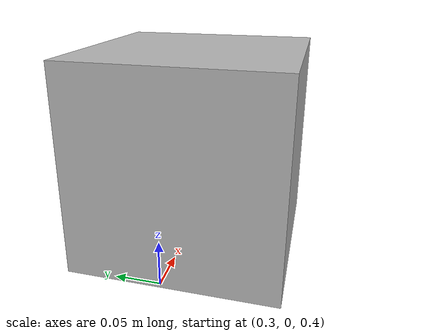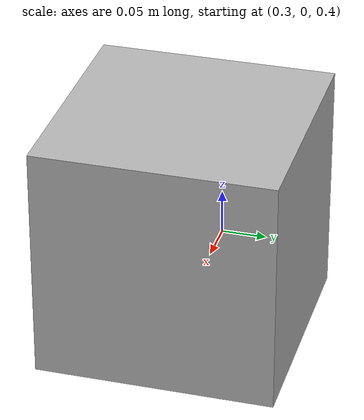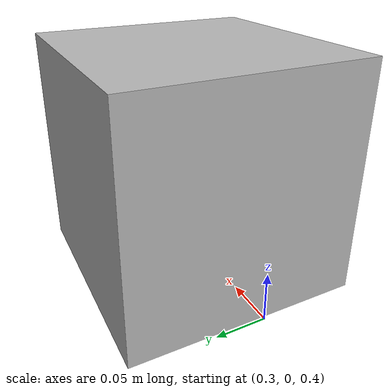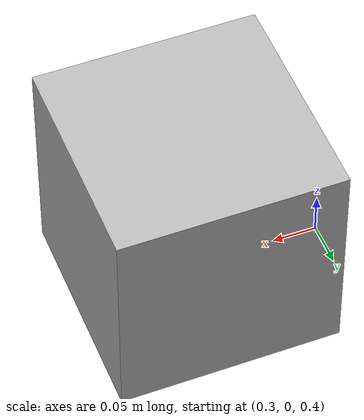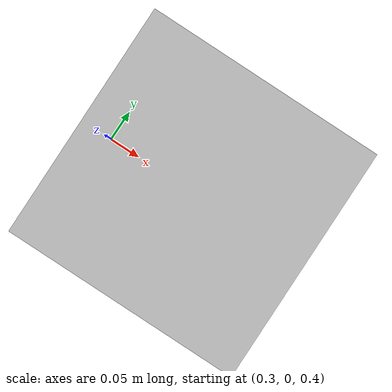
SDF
<?xml version="1.0" ?>
<sdf version="1.4">
  <world name="default">
    <include>
      <uri>model://sun</uri>
    </include>

    <model name="obs1">
      <pose>0.45 0 0.5 0 -0 0</pose>
      <static>1</static>
      <link name="link">
        <visual name="visual">
          <geometry>
            <box>
              <size>0.25 0.25 0.25</size>
            </box>
          </geometry>
        </visual>
        <collision name='collision'>
          <laser_retro>0</laser_retro>
          <geometry>
            <box>
              <size>0.25 0.25 0.25</size>
            </box>
          </geometry>
        </collision>
      </link>
    </model>

  </world>
</sdf>
